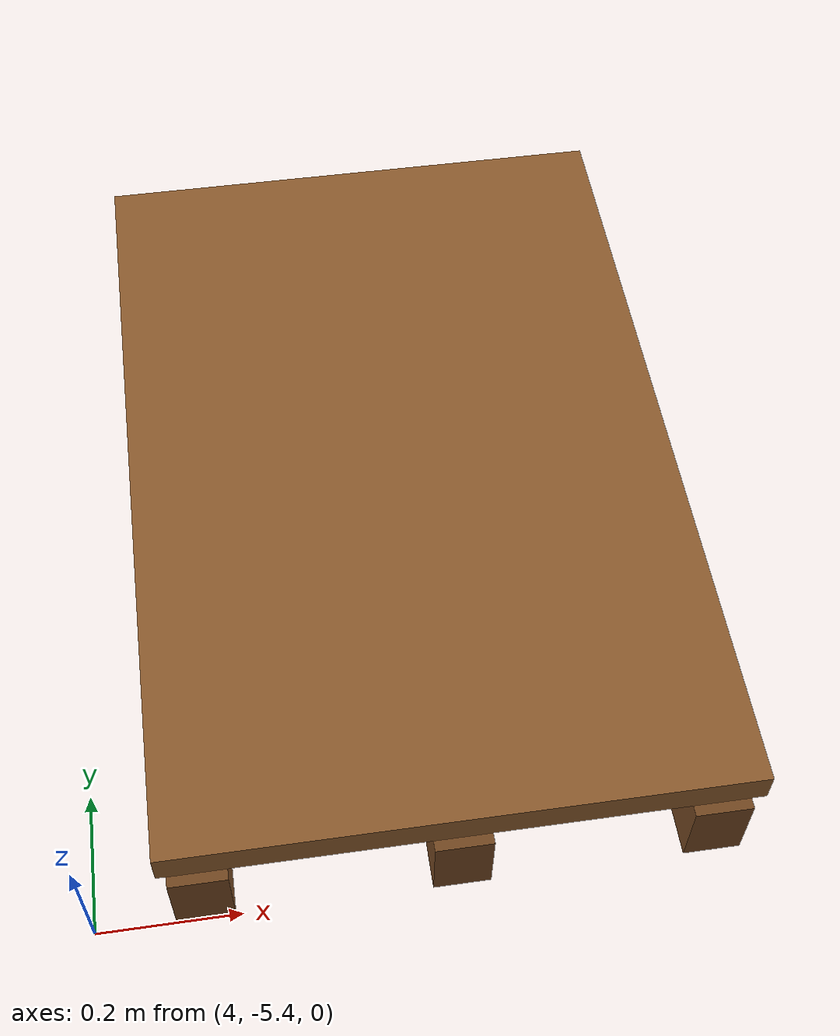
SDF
<sdf version="1.6">
 <world name="husarion_world">
  <physics name="1ms" type="ignored">
   <max_step_size>0.001</max_step_size>
   <real_time_factor>1.0</real_time_factor>
  </physics>
  <plugin filename="ignition-gazebo-contact-system" name="gz::sim::systems::Contact"/>
  <plugin filename="ignition-gazebo-imu-system" name="gz::sim::systems::Imu"/>
  <plugin filename="ignition-gazebo-physics-system" name="gz::sim::systems::Physics"/>
  <plugin filename="ignition-gazebo-scene-broadcaster-system" name="gz::sim::systems::SceneBroadcaster"/>
  <plugin filename="ignition-gazebo-sensors-system" name="gz::sim::systems::Sensors"/>
  <plugin filename="ignition-gazebo-user-commands-system" name="gz::sim::systems::UserCommands"/>
  <spherical_coordinates>
   <surface_model>EARTH_WGS84</surface_model>
   <world_frame_orientation>ENU</world_frame_orientation>
   <latitude_deg>50.088384</latitude_deg>
   <longitude_deg>19.939128</longitude_deg>
   <elevation>0</elevation>
   <heading_deg>0</heading_deg>
  </spherical_coordinates>
  <model name="mission_pallet_1">
   <pose>4.5 -4.8 0.0 0 0 1.57</pose>
   <static>false</static>
   <link name="body">
    <inertial>
     <pose>0 0 0.12 0 0 0</pose>
     <mass>120.0</mass>
     <inertia><ixx>7.0</ixx><iyy>15.0</iyy><izz>20.8</izz><ixy>0</ixy><ixz>0</ixz><iyz>0</iyz></inertia>
    </inertial>
    <collision name="top_deck">
     <pose>0 0 0.18 0 0 0</pose>
     <geometry><box><size>1.20 0.80 0.05</size></box></geometry>
     <surface>
      <friction><ode><mu>1.4</mu><mu2>1.4</mu2></ode></friction>
      <contact><ode><kp>1000000</kp><kd>800</kd><max_vel>0.05</max_vel><min_depth>0.001</min_depth></ode></contact>
     </surface>
    </collision>
    <visual name="top_deck_visual">
     <pose>0 0 0.18 0 0 0</pose>
     <geometry><box><size>1.20 0.80 0.05</size></box></geometry>
     <material><ambient>0.55 0.36 0.18 1</ambient><diffuse>0.55 0.36 0.18 1</diffuse></material>
    </visual>
    <collision name="runner_left">
     <pose>0 0.35 0.06 0 0 0</pose>
     <geometry><box><size>1.20 0.08 0.12</size></box></geometry>
     <surface>
      <friction><ode><mu>1.4</mu><mu2>1.4</mu2></ode></friction>
      <contact><ode><kp>1000000</kp><kd>800</kd><max_vel>0.05</max_vel><min_depth>0.001</min_depth></ode></contact>
     </surface>
    </collision>
    <visual name="runner_left_visual">
     <pose>0 0.35 0.06 0 0 0</pose>
     <geometry><box><size>1.20 0.08 0.12</size></box></geometry>
     <material><ambient>0.45 0.28 0.13 1</ambient><diffuse>0.45 0.28 0.13 1</diffuse></material>
    </visual>
    <collision name="runner_center">
     <pose>0 0 0.06 0 0 0</pose>
     <geometry><box><size>1.20 0.08 0.12</size></box></geometry>
     <surface>
      <friction><ode><mu>1.4</mu><mu2>1.4</mu2></ode></friction>
      <contact><ode><kp>1000000</kp><kd>800</kd><max_vel>0.05</max_vel><min_depth>0.001</min_depth></ode></contact>
     </surface>
    </collision>
    <visual name="runner_center_visual">
     <pose>0 0 0.06 0 0 0</pose>
     <geometry><box><size>1.20 0.08 0.12</size></box></geometry>
     <material><ambient>0.45 0.28 0.13 1</ambient><diffuse>0.45 0.28 0.13 1</diffuse></material>
    </visual>
    <collision name="runner_right">
     <pose>0 -0.35 0.06 0 0 0</pose>
     <geometry><box><size>1.20 0.08 0.12</size></box></geometry>
     <surface>
      <friction><ode><mu>1.4</mu><mu2>1.4</mu2></ode></friction>
      <contact><ode><kp>1000000</kp><kd>800</kd><max_vel>0.05</max_vel><min_depth>0.001</min_depth></ode></contact>
     </surface>
    </collision>
    <visual name="runner_right_visual">
     <pose>0 -0.35 0.06 0 0 0</pose>
     <geometry><box><size>1.20 0.08 0.12</size></box></geometry>
     <material><ambient>0.45 0.28 0.13 1</ambient><diffuse>0.45 0.28 0.13 1</diffuse></material>
    </visual>
   </link>
  </model>
 </world>
</sdf>
